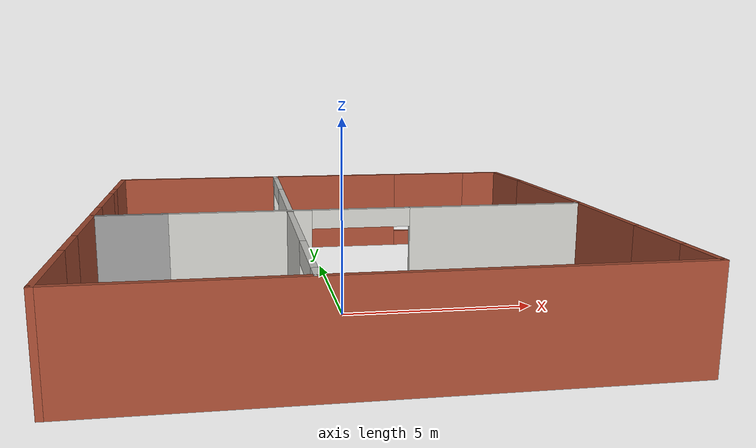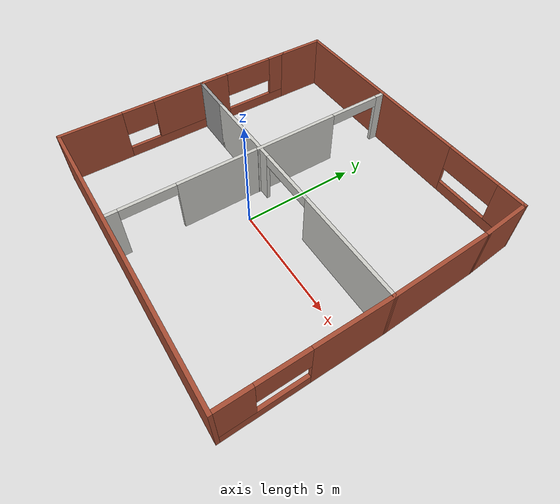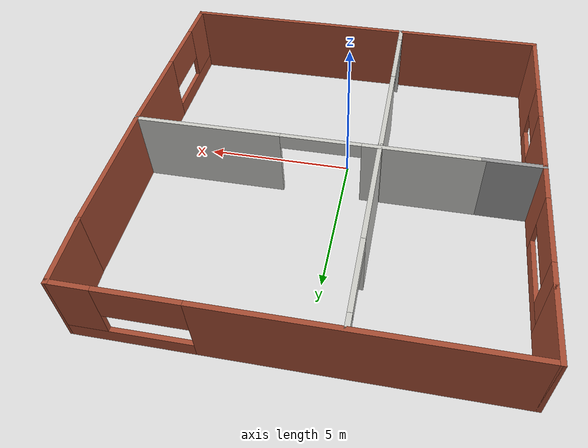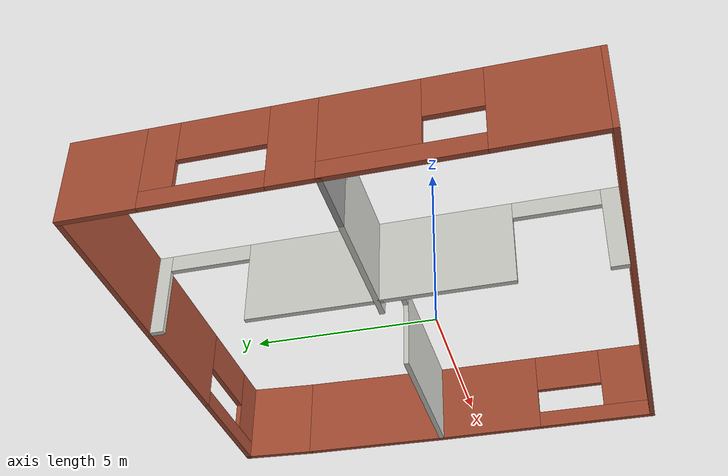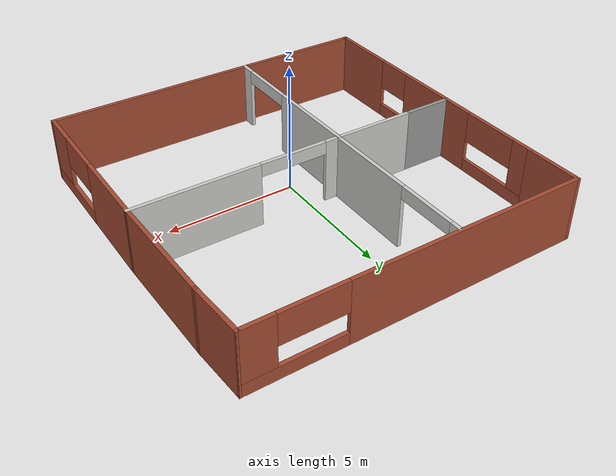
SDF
<?xml version='1.0'?>
<sdf version='1.7'>
  <model name='maison'>
    <pose>0.305447 1.24522 0 0 -0 0</pose>
    <link name='Wall_16'>
      <collision name='Wall_16_Collision'>
        <geometry>
          <box>
            <size>4.53836 0.15 2.5</size>
          </box>
        </geometry>
        <pose>0 0 1.25 0 -0 0</pose>
      </collision>
      <visual name='Wall_16_Visual'>
        <pose>0 0 1.25 0 -0 0</pose>
        <geometry>
          <box>
            <size>4.53836 0.15 2.5</size>
          </box>
        </geometry>
        <material>
          <script>
            <uri>file://media/materials/scripts/gazebo.material</uri>
            <name>Gazebo/Bricks</name>
          </script>
          <ambient>1 1 1 1</ambient>
        </material>
        <meta>
          <layer>0</layer>
        </meta>
      </visual>
      <pose>6.49515 2.26603 0 0 -0 -1.54621</pose>
    </link>
    <link name='Wall_20'>
      <pose>-1.51879 -3.22046 0 0 -0 -1.5708</pose>
      <visual name='Wall_20_Visual_0'>
        <pose>-1.48487 0 1.25 0 -0 0</pose>
        <geometry>
          <box>
            <size>3.78026 0.15 2.5</size>
          </box>
        </geometry>
        <material>
          <script>
            <uri>file://media/materials/scripts/gazebo.material</uri>
            <name>Gazebo/CeilingTiled</name>
          </script>
          <ambient>1 1 1 1</ambient>
        </material>
        <meta>
          <layer>0</layer>
        </meta>
      </visual>
      <collision name='Wall_20_Collision_0'>
        <geometry>
          <box>
            <size>3.78026 0.15 2.5</size>
          </box>
        </geometry>
        <pose>-1.48487 0 1.25 0 -0 0</pose>
      </collision>
      <visual name='Wall_20_Visual_1'>
        <pose>3.05773 0 1.25 0 -0 0</pose>
        <geometry>
          <box>
            <size>0.634539 0.15 2.5</size>
          </box>
        </geometry>
        <material>
          <script>
            <uri>file://media/materials/scripts/gazebo.material</uri>
            <name>Gazebo/CeilingTiled</name>
          </script>
          <ambient>1 1 1 1</ambient>
        </material>
        <meta>
          <layer>0</layer>
        </meta>
      </visual>
      <collision name='Wall_20_Collision_1'>
        <geometry>
          <box>
            <size>0.634539 0.15 2.5</size>
          </box>
        </geometry>
        <pose>3.05773 0 1.25 0 -0 0</pose>
      </collision>
      <visual name='Wall_20_Visual_2'>
        <pose>1.57286 0 2.25 0 -0 0</pose>
        <geometry>
          <box>
            <size>2.3352 0.15 0.5</size>
          </box>
        </geometry>
        <material>
          <script>
            <uri>file://media/materials/scripts/gazebo.material</uri>
            <name>Gazebo/CeilingTiled</name>
          </script>
          <ambient>1 1 1 1</ambient>
        </material>
        <meta>
          <layer>0</layer>
        </meta>
      </visual>
      <collision name='Wall_20_Collision_2'>
        <geometry>
          <box>
            <size>2.3352 0.15 0.5</size>
          </box>
        </geometry>
        <pose>1.57286 0 2.25 0 -0 0</pose>
      </collision>
    </link>
    <link name='Wall_24'>
      <pose>-6.55091 2.24751 0 0 -0 1.5708</pose>
      <visual name='Wall_24_Visual_0'>
        <pose>-1.57482 0 1.25 0 -0 0</pose>
        <geometry>
          <box>
            <size>1.35037 0.15 2.5</size>
          </box>
        </geometry>
        <material>
          <script>
            <uri>file://media/materials/scripts/gazebo.material</uri>
            <name>Gazebo/Bricks</name>
          </script>
          <ambient>1 1 1 1</ambient>
        </material>
        <meta>
          <layer>0</layer>
        </meta>
      </visual>
      <collision name='Wall_24_Collision_0'>
        <geometry>
          <box>
            <size>1.35037 0.15 2.5</size>
          </box>
        </geometry>
        <pose>-1.57482 0 1.25 0 -0 0</pose>
      </collision>
      <visual name='Wall_24_Visual_1'>
        <pose>0.675184 0 0.25 0 -0 0</pose>
        <geometry>
          <box>
            <size>3.14963 0.15 0.5</size>
          </box>
        </geometry>
        <material>
          <script>
            <uri>file://media/materials/scripts/gazebo.material</uri>
            <name>Gazebo/Bricks</name>
          </script>
          <ambient>1 1 1 1</ambient>
        </material>
        <meta>
          <layer>0</layer>
        </meta>
      </visual>
      <collision name='Wall_24_Collision_1'>
        <geometry>
          <box>
            <size>3.14963 0.15 0.5</size>
          </box>
        </geometry>
        <pose>0.675184 0 0.25 0 -0 0</pose>
      </collision>
      <visual name='Wall_24_Visual_2'>
        <pose>1.82038 0 1.5 0 -0 0</pose>
        <geometry>
          <box>
            <size>0.859232 0.15 2</size>
          </box>
        </geometry>
        <material>
          <script>
            <uri>file://media/materials/scripts/gazebo.material</uri>
            <name>Gazebo/Bricks</name>
          </script>
          <ambient>1 1 1 1</ambient>
        </material>
        <meta>
          <layer>0</layer>
        </meta>
      </visual>
      <collision name='Wall_24_Collision_2'>
        <geometry>
          <box>
            <size>0.859232 0.15 2</size>
          </box>
        </geometry>
        <pose>1.82038 0 1.5 0 -0 0</pose>
      </collision>
      <visual name='Wall_24_Visual_3'>
        <pose>0.245568 0 1.9 0 -0 0</pose>
        <geometry>
          <box>
            <size>2.2904 0.15 1.2</size>
          </box>
        </geometry>
        <material>
          <script>
            <uri>file://media/materials/scripts/gazebo.material</uri>
            <name>Gazebo/Bricks</name>
          </script>
          <ambient>1 1 1 1</ambient>
        </material>
        <meta>
          <layer>0</layer>
        </meta>
      </visual>
      <collision name='Wall_24_Collision_3'>
        <geometry>
          <box>
            <size>2.2904 0.15 1.2</size>
          </box>
        </geometry>
        <pose>0.245568 0 1.9 0 -0 0</pose>
      </collision>
    </link>
    <link name='Wall_29'>
      <collision name='Wall_29_Collision'>
        <geometry>
          <box>
            <size>2.25 0.15 2.5</size>
          </box>
        </geometry>
        <pose>0 0 1.25 0 -0 0</pose>
      </collision>
      <visual name='Wall_29_Visual'>
        <pose>0 0 1.25 0 -0 0</pose>
        <geometry>
          <box>
            <size>2.25 0.15 2.5</size>
          </box>
        </geometry>
        <material>
          <script>
            <uri>file://media/materials/scripts/gazebo.material</uri>
            <name>Gazebo/Bricks</name>
          </script>
          <ambient>1 1 1 1</ambient>
        </material>
        <meta>
          <layer>0</layer>
        </meta>
      </visual>
      <pose>-6.55091 5.47251 0 0 -0 1.5708</pose>
    </link>
    <link name='Wall_30'>
      <pose>-0.12591 6.52251 0 0 -0 0</pose>
      <visual name='Wall_30_Visual_0'>
        <pose>-1.86815 0 1.25 0 -0 0</pose>
        <geometry>
          <box>
            <size>9.2637 0.15 2.5</size>
          </box>
        </geometry>
        <material>
          <script>
            <uri>file://media/materials/scripts/gazebo.material</uri>
            <name>Gazebo/Bricks</name>
          </script>
          <ambient>1 1 1 1</ambient>
        </material>
        <meta>
          <layer>0</layer>
        </meta>
      </visual>
      <collision name='Wall_30_Collision_0'>
        <geometry>
          <box>
            <size>9.2637 0.15 2.5</size>
          </box>
        </geometry>
        <pose>-1.86815 0 1.25 0 -0 0</pose>
      </collision>
      <visual name='Wall_30_Visual_1'>
        <pose>4.63185 0 0.25 0 -0 0</pose>
        <geometry>
          <box>
            <size>3.7363 0.15 0.5</size>
          </box>
        </geometry>
        <material>
          <script>
            <uri>file://media/materials/scripts/gazebo.material</uri>
            <name>Gazebo/Bricks</name>
          </script>
          <ambient>1 1 1 1</ambient>
        </material>
        <meta>
          <layer>0</layer>
        </meta>
      </visual>
      <collision name='Wall_30_Collision_1'>
        <geometry>
          <box>
            <size>3.7363 0.15 0.5</size>
          </box>
        </geometry>
        <pose>4.63185 0 0.25 0 -0 0</pose>
      </collision>
      <visual name='Wall_30_Visual_2'>
        <pose>5.85985 0 1.5 0 -0 0</pose>
        <geometry>
          <box>
            <size>1.28029 0.15 2</size>
          </box>
        </geometry>
        <material>
          <script>
            <uri>file://media/materials/scripts/gazebo.material</uri>
            <name>Gazebo/Bricks</name>
          </script>
          <ambient>1 1 1 1</ambient>
        </material>
        <meta>
          <layer>0</layer>
        </meta>
      </visual>
      <collision name='Wall_30_Collision_2'>
        <geometry>
          <box>
            <size>1.28029 0.15 2</size>
          </box>
        </geometry>
        <pose>5.85985 0 1.5 0 -0 0</pose>
      </collision>
      <visual name='Wall_30_Visual_3'>
        <pose>3.99171 0 1.9 0 -0 0</pose>
        <geometry>
          <box>
            <size>2.456 0.15 1.2</size>
          </box>
        </geometry>
        <material>
          <script>
            <uri>file://media/materials/scripts/gazebo.material</uri>
            <name>Gazebo/Bricks</name>
          </script>
          <ambient>1 1 1 1</ambient>
        </material>
        <meta>
          <layer>0</layer>
        </meta>
      </visual>
      <collision name='Wall_30_Collision_3'>
        <geometry>
          <box>
            <size>2.456 0.15 1.2</size>
          </box>
        </geometry>
        <pose>3.99171 0 1.9 0 -0 0</pose>
      </collision>
    </link>
    <link name='Wall_31'>
      <collision name='Wall_31_Collision'>
        <geometry>
          <box>
            <size>2.21786 0.15 2.5</size>
          </box>
        </geometry>
        <pose>0 0 1.25 0 -0 0</pose>
      </collision>
      <visual name='Wall_31_Visual'>
        <pose>0 0 1.25 0 -0 0</pose>
        <geometry>
          <box>
            <size>2.21786 0.15 2.5</size>
          </box>
        </geometry>
        <material>
          <script>
            <uri>file://media/materials/scripts/gazebo.material</uri>
            <name>Gazebo/Bricks</name>
          </script>
          <ambient>1 1 1 1</ambient>
        </material>
        <meta>
          <layer>0</layer>
        </meta>
      </visual>
      <pose>6.37015 5.49103 0 0 -0 -1.50202</pose>
    </link>
    <link name='Wall_36'>
      <pose>-1.50319 3.22014 0 0 -0 -1.5708</pose>
      <visual name='Wall_36_Visual_0'>
        <pose>-3.07587 0 1.25 0 -0 0</pose>
        <geometry>
          <box>
            <size>0.468261 0.15 2.5</size>
          </box>
        </geometry>
        <material>
          <script>
            <uri>file://media/materials/scripts/gazebo.material</uri>
            <name>Gazebo/CeilingTiled</name>
          </script>
          <ambient>1 1 1 1</ambient>
        </material>
        <meta>
          <layer>0</layer>
        </meta>
      </visual>
      <collision name='Wall_36_Collision_0'>
        <geometry>
          <box>
            <size>0.468261 0.15 2.5</size>
          </box>
        </geometry>
        <pose>-3.07587 0 1.25 0 -0 0</pose>
      </collision>
      <visual name='Wall_36_Visual_1'>
        <pose>1.40173 0 1.25 0 -0 0</pose>
        <geometry>
          <box>
            <size>3.81654 0.15 2.5</size>
          </box>
        </geometry>
        <material>
          <script>
            <uri>file://media/materials/scripts/gazebo.material</uri>
            <name>Gazebo/CeilingTiled</name>
          </script>
          <ambient>1 1 1 1</ambient>
        </material>
        <meta>
          <layer>0</layer>
        </meta>
      </visual>
      <collision name='Wall_36_Collision_1'>
        <geometry>
          <box>
            <size>3.81654 0.15 2.5</size>
          </box>
        </geometry>
        <pose>1.40173 0 1.25 0 -0 0</pose>
      </collision>
      <visual name='Wall_36_Visual_2'>
        <pose>-1.67414 0 2.25 0 -0 0</pose>
        <geometry>
          <box>
            <size>2.3352 0.15 0.5</size>
          </box>
        </geometry>
        <material>
          <script>
            <uri>file://media/materials/scripts/gazebo.material</uri>
            <name>Gazebo/CeilingTiled</name>
          </script>
          <ambient>1 1 1 1</ambient>
        </material>
        <meta>
          <layer>0</layer>
        </meta>
      </visual>
      <collision name='Wall_36_Collision_2'>
        <geometry>
          <box>
            <size>2.3352 0.15 0.5</size>
          </box>
        </geometry>
        <pose>-1.67414 0 2.25 0 -0 0</pose>
      </collision>
    </link>
    <link name='Wall_4'>
      <pose>0.913765 0.072512 0 0 -0 0</pose>
      <visual name='Wall_4_Visual_0'>
        <pose>-3.77795 0 1.25 0 -0 0</pose>
        <geometry>
          <box>
            <size>3.86476 0.15 2.5</size>
          </box>
        </geometry>
        <material>
          <script>
            <uri>file://media/materials/scripts/gazebo.material</uri>
            <name>Gazebo/CeilingTiled</name>
          </script>
          <ambient>1 1 1 1</ambient>
        </material>
        <meta>
          <layer>0</layer>
        </meta>
      </visual>
      <collision name='Wall_4_Collision_0'>
        <geometry>
          <box>
            <size>3.86476 0.15 2.5</size>
          </box>
        </geometry>
        <pose>-3.77795 0 1.25 0 -0 0</pose>
      </collision>
      <visual name='Wall_4_Visual_1'>
        <pose>3.25238 0 1.25 0 -0 0</pose>
        <geometry>
          <box>
            <size>4.91589 0.15 2.5</size>
          </box>
        </geometry>
        <material>
          <script>
            <uri>file://media/materials/scripts/gazebo.material</uri>
            <name>Gazebo/CeilingTiled</name>
          </script>
          <ambient>1 1 1 1</ambient>
        </material>
        <meta>
          <layer>0</layer>
        </meta>
      </visual>
      <collision name='Wall_4_Collision_1'>
        <geometry>
          <box>
            <size>4.91589 0.15 2.5</size>
          </box>
        </geometry>
        <pose>3.25238 0 1.25 0 -0 0</pose>
      </collision>
      <visual name='Wall_4_Visual_2'>
        <pose>-0.52557 0 2.25 0 -0 0</pose>
        <geometry>
          <box>
            <size>2.64 0.15 0.5</size>
          </box>
        </geometry>
        <material>
          <script>
            <uri>file://media/materials/scripts/gazebo.material</uri>
            <name>Gazebo/CeilingTiled</name>
          </script>
          <ambient>1 1 1 1</ambient>
        </material>
        <meta>
          <layer>0</layer>
        </meta>
      </visual>
      <collision name='Wall_4_Collision_2'>
        <geometry>
          <box>
            <size>2.64 0.15 0.5</size>
          </box>
        </geometry>
        <pose>-0.52557 0 2.25 0 -0 0</pose>
      </collision>
    </link>
    <link name='Wall_5'>
      <pose>6.54909 -3.22749 0 0 -0 -1.5708</pose>
      <visual name='Wall_5_Visual_0'>
        <pose>-1.75318 0 1.25 0 -0 0</pose>
        <geometry>
          <box>
            <size>3.24363 0.15 2.5</size>
          </box>
        </geometry>
        <material>
          <script>
            <uri>file://media/materials/scripts/gazebo.material</uri>
            <name>Gazebo/Bricks</name>
          </script>
          <ambient>1 1 1 1</ambient>
        </material>
        <meta>
          <layer>0</layer>
        </meta>
      </visual>
      <collision name='Wall_5_Collision_0'>
        <geometry>
          <box>
            <size>3.24363 0.15 2.5</size>
          </box>
        </geometry>
        <pose>-1.75318 0 1.25 0 -0 0</pose>
      </collision>
      <visual name='Wall_5_Visual_1'>
        <pose>1.62182 0 0.25 0 -0 0</pose>
        <geometry>
          <box>
            <size>3.50637 0.15 0.5</size>
          </box>
        </geometry>
        <material>
          <script>
            <uri>file://media/materials/scripts/gazebo.material</uri>
            <name>Gazebo/Bricks</name>
          </script>
          <ambient>1 1 1 1</ambient>
        </material>
        <meta>
          <layer>0</layer>
        </meta>
      </visual>
      <collision name='Wall_5_Collision_1'>
        <geometry>
          <box>
            <size>3.50637 0.15 0.5</size>
          </box>
        </geometry>
        <pose>1.62182 0 0.25 0 -0 0</pose>
      </collision>
      <visual name='Wall_5_Visual_2'>
        <pose>2.62902 0 1.5 0 -0 0</pose>
        <geometry>
          <box>
            <size>1.49197 0.15 2</size>
          </box>
        </geometry>
        <material>
          <script>
            <uri>file://media/materials/scripts/gazebo.material</uri>
            <name>Gazebo/Bricks</name>
          </script>
          <ambient>1 1 1 1</ambient>
        </material>
        <meta>
          <layer>0</layer>
        </meta>
      </visual>
      <collision name='Wall_5_Collision_2'>
        <geometry>
          <box>
            <size>1.49197 0.15 2</size>
          </box>
        </geometry>
        <pose>2.62902 0 1.5 0 -0 0</pose>
      </collision>
      <visual name='Wall_5_Visual_3'>
        <pose>0.875832 0 1.9 0 -0 0</pose>
        <geometry>
          <box>
            <size>2.0144 0.15 1.2</size>
          </box>
        </geometry>
        <material>
          <script>
            <uri>file://media/materials/scripts/gazebo.material</uri>
            <name>Gazebo/Bricks</name>
          </script>
          <ambient>1 1 1 1</ambient>
        </material>
        <meta>
          <layer>0</layer>
        </meta>
      </visual>
      <collision name='Wall_5_Collision_3'>
        <geometry>
          <box>
            <size>2.0144 0.15 1.2</size>
          </box>
        </geometry>
        <pose>0.875832 0 1.9 0 -0 0</pose>
      </collision>
    </link>
    <link name='Wall_7'>
      <collision name='Wall_7_Collision'>
        <geometry>
          <box>
            <size>13.25 0.15 2.5</size>
          </box>
        </geometry>
        <pose>0 0 1.25 0 -0 0</pose>
      </collision>
      <visual name='Wall_7_Visual'>
        <pose>0 0 1.25 0 -0 0</pose>
        <geometry>
          <box>
            <size>13.25 0.15 2.5</size>
          </box>
        </geometry>
        <material>
          <script>
            <uri>file://media/materials/scripts/gazebo.material</uri>
            <name>Gazebo/Bricks</name>
          </script>
          <ambient>1 1 1 1</ambient>
        </material>
        <meta>
          <layer>0</layer>
        </meta>
      </visual>
      <pose>-0.00091 -6.52749 0 0 -0 3.14159</pose>
    </link>
    <link name='Wall_8'>
      <pose>-6.55091 -3.22749 0 0 -0 1.5708</pose>
      <visual name='Wall_8_Visual_0'>
        <pose>-1.96662 0 1.25 0 -0 0</pose>
        <geometry>
          <box>
            <size>2.81677 0.15 2.5</size>
          </box>
        </geometry>
        <material>
          <script>
            <uri>file://media/materials/scripts/gazebo.material</uri>
            <name>Gazebo/Bricks</name>
          </script>
          <ambient>1 1 1 1</ambient>
        </material>
        <meta>
          <layer>0</layer>
        </meta>
      </visual>
      <collision name='Wall_8_Collision_0'>
        <geometry>
          <box>
            <size>2.81677 0.15 2.5</size>
          </box>
        </geometry>
        <pose>-1.96662 0 1.25 0 -0 0</pose>
      </collision>
      <visual name='Wall_8_Visual_1'>
        <pose>1.40838 0 0.25 0 -0 0</pose>
        <geometry>
          <box>
            <size>3.93323 0.15 0.5</size>
          </box>
        </geometry>
        <material>
          <script>
            <uri>file://media/materials/scripts/gazebo.material</uri>
            <name>Gazebo/Bricks</name>
          </script>
          <ambient>1 1 1 1</ambient>
        </material>
        <meta>
          <layer>0</layer>
        </meta>
      </visual>
      <collision name='Wall_8_Collision_1'>
        <geometry>
          <box>
            <size>3.93323 0.15 0.5</size>
          </box>
        </geometry>
        <pose>1.40838 0 0.25 0 -0 0</pose>
      </collision>
      <visual name='Wall_8_Visual_2'>
        <pose>2.13958 0 1.5 0 -0 0</pose>
        <geometry>
          <box>
            <size>2.47083 0.15 2</size>
          </box>
        </geometry>
        <material>
          <script>
            <uri>file://media/materials/scripts/gazebo.material</uri>
            <name>Gazebo/Bricks</name>
          </script>
          <ambient>1 1 1 1</ambient>
        </material>
        <meta>
          <layer>0</layer>
        </meta>
      </visual>
      <collision name='Wall_8_Collision_2'>
        <geometry>
          <box>
            <size>2.47083 0.15 2</size>
          </box>
        </geometry>
        <pose>2.13958 0 1.5 0 -0 0</pose>
      </collision>
      <visual name='Wall_8_Visual_3'>
        <pose>0.172968 0 1.9 0 -0 0</pose>
        <geometry>
          <box>
            <size>1.4624 0.15 1.2</size>
          </box>
        </geometry>
        <material>
          <script>
            <uri>file://media/materials/scripts/gazebo.material</uri>
            <name>Gazebo/Bricks</name>
          </script>
          <ambient>1 1 1 1</ambient>
        </material>
        <meta>
          <layer>0</layer>
        </meta>
      </visual>
      <collision name='Wall_8_Collision_3'>
        <geometry>
          <box>
            <size>1.4624 0.15 1.2</size>
          </box>
        </geometry>
        <pose>0.172968 0 1.9 0 -0 0</pose>
      </collision>
    </link>
    <link name='Wall_9'>
      <collision name='Wall_9_Collision'>
        <geometry>
          <box>
            <size>1.97935 0.15 2.5</size>
          </box>
        </geometry>
        <pose>0 0 1.25 0 -0 0</pose>
      </collision>
      <visual name='Wall_9_Visual'>
        <pose>0 0 1.25 0 -0 0</pose>
        <geometry>
          <box>
            <size>1.97935 0.15 2.5</size>
          </box>
        </geometry>
        <material>
          <script>
            <uri>file://media/materials/scripts/gazebo.material</uri>
            <name>Gazebo/Grey</name>
          </script>
          <ambient>1 1 1 1</ambient>
        </material>
        <meta>
          <layer>0</layer>
        </meta>
      </visual>
      <pose>-5.63624 0.072512 0 0 -0 0</pose>
    </link>
    <static>1</static>
  </model>
</sdf>
